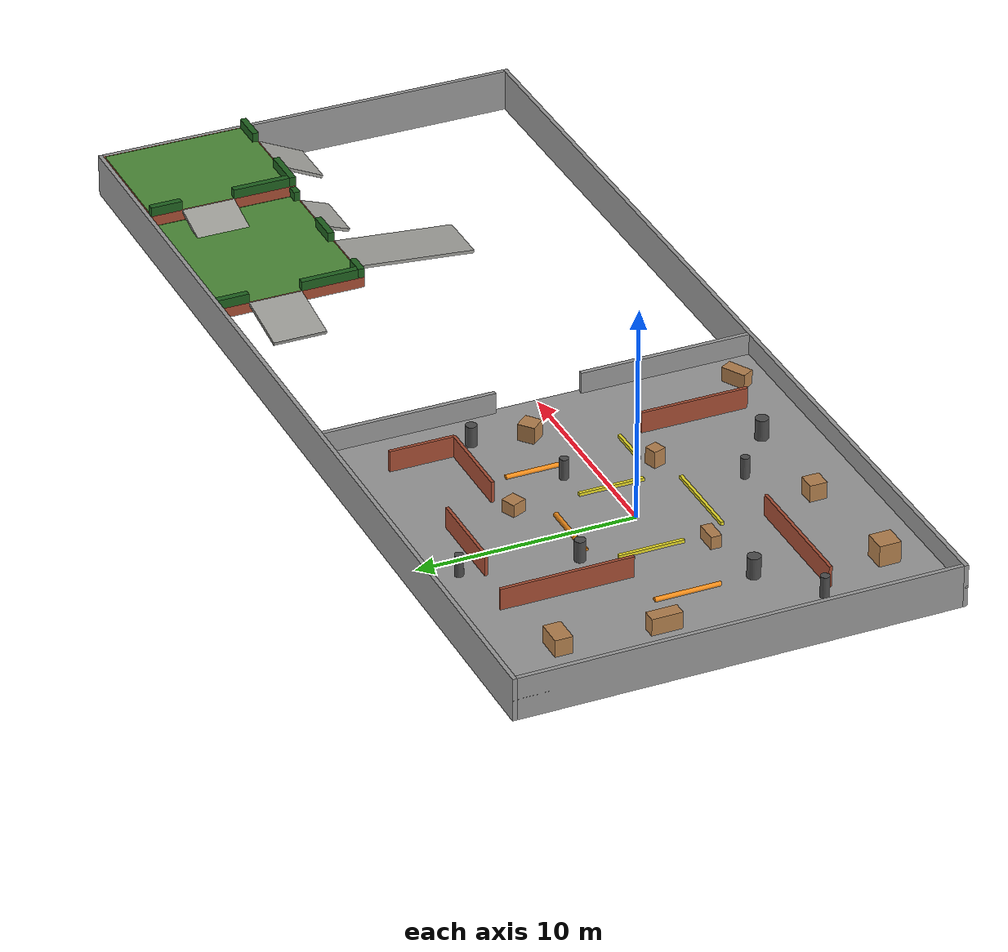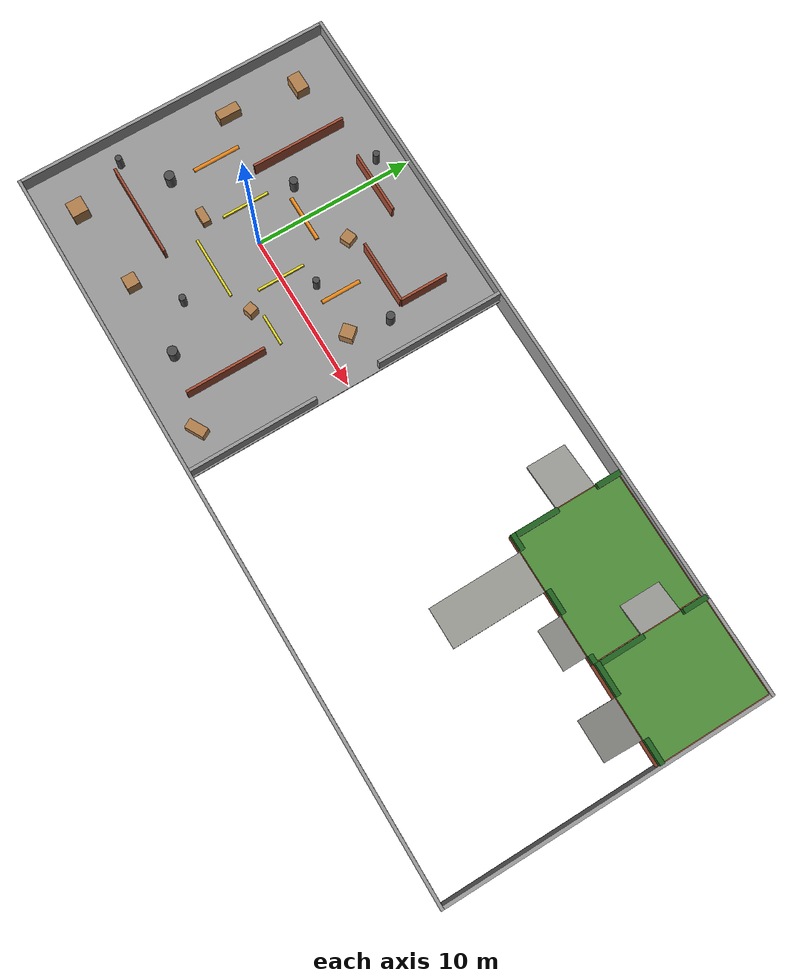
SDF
<sdf version="1.6">
 <world name="default">
  <include><uri>model://sun</uri></include>
  <model name="arena_floor">
   <static>true</static>
   <link name="floor">
    <pose>0 0 -0.05 0 0 0</pose>
    <collision name="collision">
     <geometry><box><size>20.4 20.4 0.1</size></box></geometry>
     <surface><friction><ode><mu>1.0</mu><mu2>1.0</mu2></ode></friction></surface>
    </collision>
    <visual name="visual">
     <geometry><box><size>20.4 20.4 0.1</size></box></geometry>
     <material>
      <script><uri>file://media/materials/scripts/gazebo.material</uri><name>Gazebo/Grey</name></script>
     </material>
    </visual>
   </link>
  </model>
  <model name="arena_walls">
   <static>true</static>
   <link name="north">
    <pose>13.0 10.1 0.0 0 0 0</pose>
    <collision name="collision">
     <geometry><box><size>46.4 0.2 2.0</size></box></geometry>
     <surface><friction><ode><mu>0.05</mu><mu2>0.05</mu2></ode></friction></surface>
    </collision>
    <visual name="visual">
     <geometry><box><size>46.4 0.2 2.0</size></box></geometry>
     <material>
      <script><uri>file://media/materials/scripts/gazebo.material</uri><name>Gazebo/Grey</name></script>
     </material>
    </visual>
   </link>
   <link name="south">
    <pose>13.0 -10.1 0.0 0 0 0</pose>
    <collision name="collision">
     <geometry><box><size>46.4 0.2 2.0</size></box></geometry>
     <surface><friction><ode><mu>0.05</mu><mu2>0.05</mu2></ode></friction></surface>
    </collision>
    <visual name="visual">
     <geometry><box><size>46.4 0.2 2.0</size></box></geometry>
     <material>
      <script><uri>file://media/materials/scripts/gazebo.material</uri><name>Gazebo/Grey</name></script>
     </material>
    </visual>
   </link>
   <link name="west">
    <pose>-10.1 0 0.0 0 0 0</pose>
    <collision name="collision">
     <geometry><box><size>0.2 20.0 2.0</size></box></geometry>
     <surface><friction><ode><mu>0.05</mu><mu2>0.05</mu2></ode></friction></surface>
    </collision>
    <visual name="visual">
     <geometry><box><size>0.2 20.0 2.0</size></box></geometry>
     <material>
      <script><uri>file://media/materials/scripts/gazebo.material</uri><name>Gazebo/Grey</name></script>
     </material>
    </visual>
   </link>
   <link name="east">
    <pose>36.1 0 0.0 0 0 0</pose>
    <collision name="collision">
     <geometry><box><size>0.2 20.0 2.0</size></box></geometry>
     <surface><friction><ode><mu>0.05</mu><mu2>0.05</mu2></ode></friction></surface>
    </collision>
    <visual name="visual">
     <geometry><box><size>0.2 20.0 2.0</size></box></geometry>
     <material>
      <script><uri>file://media/materials/scripts/gazebo.material</uri><name>Gazebo/Grey</name></script>
     </material>
    </visual>
   </link>
   <link name="gate_north">
    <pose>10.0 6 0.5 0 0 0</pose>
    <collision name="collision">
     <geometry><box><size>0.2 8.0 1.0</size></box></geometry>
     <surface><friction><ode><mu>0.05</mu><mu2>0.05</mu2></ode></friction></surface>
    </collision>
    <visual name="visual">
     <geometry><box><size>0.2 8.0 1.0</size></box></geometry>
     <material>
      <script><uri>file://media/materials/scripts/gazebo.material</uri><name>Gazebo/Grey</name></script>
     </material>
    </visual>
   </link>
   <link name="gate_south">
    <pose>10.0 -6 0.5 0 0 0</pose>
    <collision name="collision">
     <geometry><box><size>0.2 8.0 1.0</size></box></geometry>
     <surface><friction><ode><mu>0.05</mu><mu2>0.05</mu2></ode></friction></surface>
    </collision>
    <visual name="visual">
     <geometry><box><size>0.2 8.0 1.0</size></box></geometry>
     <material>
      <script><uri>file://media/materials/scripts/gazebo.material</uri><name>Gazebo/Grey</name></script>
     </material>
    </visual>
   </link>
  </model>
  <model name="inner_walls">
   <static>true</static>
   <link name="wall_0">
    <pose>-4.0 5.0 0.5 0 0 1.5708</pose>
    <collision name="collision">
     <geometry><box><size>6.0 0.15 1.0</size></box></geometry>
     <surface><friction><ode><mu>0.05</mu><mu2>0.05</mu2></ode></friction></surface>
    </collision>
    <visual name="visual">
     <geometry><box><size>6.0 0.15 1.0</size></box></geometry>
     <material>
      <script><uri>file://media/materials/scripts/gazebo.material</uri><name>Gazebo/Bricks</name></script>
     </material>
    </visual>
   </link>
   <link name="wall_1">
    <pose>-5.0 -5.0 0.5 0 0 0.0</pose>
    <collision name="collision">
     <geometry><box><size>6.0 0.15 1.0</size></box></geometry>
     <surface><friction><ode><mu>0.05</mu><mu2>0.05</mu2></ode></friction></surface>
    </collision>
    <visual name="visual">
     <geometry><box><size>6.0 0.15 1.0</size></box></geometry>
     <material>
      <script><uri>file://media/materials/scripts/gazebo.material</uri><name>Gazebo/Bricks</name></script>
     </material>
    </visual>
   </link>
   <link name="wall_2">
    <pose>6.0 -5.5 0.5 0 0 1.5708</pose>
    <collision name="collision">
     <geometry><box><size>5.0 0.15 1.0</size></box></geometry>
     <surface><friction><ode><mu>0.05</mu><mu2>0.05</mu2></ode></friction></surface>
    </collision>
    <visual name="visual">
     <geometry><box><size>5.0 0.15 1.0</size></box></geometry>
     <material>
      <script><uri>file://media/materials/scripts/gazebo.material</uri><name>Gazebo/Bricks</name></script>
     </material>
    </visual>
   </link>
   <link name="wall_3">
    <pose>5.5 5.0 0.5 0 0 0.0</pose>
    <collision name="collision">
     <geometry><box><size>4.0 0.15 1.0</size></box></geometry>
     <surface><friction><ode><mu>0.05</mu><mu2>0.05</mu2></ode></friction></surface>
    </collision>
    <visual name="visual">
     <geometry><box><size>4.0 0.15 1.0</size></box></geometry>
     <material>
      <script><uri>file://media/materials/scripts/gazebo.material</uri><name>Gazebo/Bricks</name></script>
     </material>
    </visual>
   </link>
   <link name="wall_4">
    <pose>7.5 6.5 0.5 0 0 1.5708</pose>
    <collision name="collision">
     <geometry><box><size>3.0 0.15 1.0</size></box></geometry>
     <surface><friction><ode><mu>0.05</mu><mu2>0.05</mu2></ode></friction></surface>
    </collision>
    <visual name="visual">
     <geometry><box><size>3.0 0.15 1.0</size></box></geometry>
     <material>
      <script><uri>file://media/materials/scripts/gazebo.material</uri><name>Gazebo/Bricks</name></script>
     </material>
    </visual>
   </link>
   <link name="wall_5">
    <pose>0.5 7.5 0.5 0 0 0.0</pose>
    <collision name="collision">
     <geometry><box><size>4.0 0.15 1.0</size></box></geometry>
     <surface><friction><ode><mu>0.05</mu><mu2>0.05</mu2></ode></friction></surface>
    </collision>
    <visual name="visual">
     <geometry><box><size>4.0 0.15 1.0</size></box></geometry>
     <material>
      <script><uri>file://media/materials/scripts/gazebo.material</uri><name>Gazebo/Bricks</name></script>
     </material>
    </visual>
   </link>
  </model>
  <model name="boxes">
   <static>true</static>
   <link name="box_0">
    <pose>3.5 -2.5 0.4 0 0 0.3</pose>
    <collision name="collision">
     <geometry><box><size>0.6 0.6 0.8</size></box></geometry>
     <surface><friction><ode><mu>0.05</mu><mu2>0.05</mu2></ode></friction></surface>
    </collision>
    <visual name="visual">
     <geometry><box><size>0.6 0.6 0.8</size></box></geometry>
     <material>
      <script><uri>file://media/materials/scripts/gazebo.material</uri><name>Gazebo/Wood</name></script>
     </material>
    </visual>
   </link>
   <link name="box_1">
    <pose>-3.0 -2.0 0.3 0 0 0.0</pose>
    <collision name="collision">
     <geometry><box><size>1.0 0.5 0.6</size></box></geometry>
     <surface><friction><ode><mu>0.05</mu><mu2>0.05</mu2></ode></friction></surface>
    </collision>
    <visual name="visual">
     <geometry><box><size>1.0 0.5 0.6</size></box></geometry>
     <material>
      <script><uri>file://media/materials/scripts/gazebo.material</uri><name>Gazebo/Wood</name></script>
     </material>
    </visual>
   </link>
   <link name="box_2">
    <pose>7.5 1.5 0.4 0 0 0.7</pose>
    <collision name="collision">
     <geometry><box><size>0.8 0.8 0.8</size></box></geometry>
     <surface><friction><ode><mu>0.05</mu><mu2>0.05</mu2></ode></friction></surface>
    </collision>
    <visual name="visual">
     <geometry><box><size>0.8 0.8 0.8</size></box></geometry>
     <material>
      <script><uri>file://media/materials/scripts/gazebo.material</uri><name>Gazebo/Wood</name></script>
     </material>
    </visual>
   </link>
   <link name="box_3">
    <pose>-7.5 7.0 0.4 0 0 0.0</pose>
    <collision name="collision">
     <geometry><box><size>1.2 0.8 0.8</size></box></geometry>
     <surface><friction><ode><mu>0.05</mu><mu2>0.05</mu2></ode></friction></surface>
    </collision>
    <visual name="visual">
     <geometry><box><size>1.2 0.8 0.8</size></box></geometry>
     <material>
      <script><uri>file://media/materials/scripts/gazebo.material</uri><name>Gazebo/Wood</name></script>
     </material>
    </visual>
   </link>
   <link name="box_4">
    <pose>2.5 4.5 0.3 0 0 0.4</pose>
    <collision name="collision">
     <geometry><box><size>0.7 0.7 0.6</size></box></geometry>
     <surface><friction><ode><mu>0.05</mu><mu2>0.05</mu2></ode></friction></surface>
    </collision>
    <visual name="visual">
     <geometry><box><size>0.7 0.7 0.6</size></box></geometry>
     <material>
      <script><uri>file://media/materials/scripts/gazebo.material</uri><name>Gazebo/Wood</name></script>
     </material>
    </visual>
   </link>
   <link name="box_5">
    <pose>-7.0 -8.0 0.5 0 0 0.0</pose>
    <collision name="collision">
     <geometry><box><size>1.0 1.0 1.0</size></box></geometry>
     <surface><friction><ode><mu>0.05</mu><mu2>0.05</mu2></ode></friction></surface>
    </collision>
    <visual name="visual">
     <geometry><box><size>1.0 1.0 1.0</size></box></geometry>
     <material>
      <script><uri>file://media/materials/scripts/gazebo.material</uri><name>Gazebo/Wood</name></script>
     </material>
    </visual>
   </link>
   <link name="box_6">
    <pose>8.0 -8.5 0.35 0 0 0.5</pose>
    <collision name="collision">
     <geometry><box><size>1.2 0.6 0.7</size></box></geometry>
     <surface><friction><ode><mu>0.05</mu><mu2>0.05</mu2></ode></friction></surface>
    </collision>
    <visual name="visual">
     <geometry><box><size>1.2 0.6 0.7</size></box></geometry>
     <material>
      <script><uri>file://media/materials/scripts/gazebo.material</uri><name>Gazebo/Wood</name></script>
     </material>
    </visual>
   </link>
   <link name="box_7">
    <pose>-1.5 -7.5 0.4 0 0 0.0</pose>
    <collision name="collision">
     <geometry><box><size>0.8 0.8 0.8</size></box></geometry>
     <surface><friction><ode><mu>0.05</mu><mu2>0.05</mu2></ode></friction></surface>
    </collision>
    <visual name="visual">
     <geometry><box><size>0.8 0.8 0.8</size></box></geometry>
     <material>
      <script><uri>file://media/materials/scripts/gazebo.material</uri><name>Gazebo/Wood</name></script>
     </material>
    </visual>
   </link>
   <link name="box_8">
    <pose>-8.0 2.5 0.4 0 0 0.0</pose>
    <collision name="collision">
     <geometry><box><size>0.6 1.4 0.8</size></box></geometry>
     <surface><friction><ode><mu>0.05</mu><mu2>0.05</mu2></ode></friction></surface>
    </collision>
    <visual name="visual">
     <geometry><box><size>0.6 1.4 0.8</size></box></geometry>
     <material>
      <script><uri>file://media/materials/scripts/gazebo.material</uri><name>Gazebo/Wood</name></script>
     </material>
    </visual>
   </link>
  </model>
  <model name="pillars">
   <static>true</static>
   <link name="pillar_0">
    <pose>4.0 1.5 0.5 0 0 0</pose>
    <collision name="collision">
     <geometry><cylinder><radius>0.2</radius><length>1.0</length></cylinder></geometry>
     <surface><friction><ode><mu>0.05</mu><mu2>0.05</mu2></ode></friction></surface>
    </collision>
    <visual name="visual">
     <geometry><cylinder><radius>0.2</radius><length>1.0</length></cylinder></geometry>
     <material>
      <script><uri>file://media/materials/scripts/gazebo.material</uri><name>Gazebo/DarkGrey</name></script>
     </material>
    </visual>
   </link>
   <link name="pillar_1">
    <pose>-2.0 3.5 0.5 0 0 0</pose>
    <collision name="collision">
     <geometry><cylinder><radius>0.25</radius><length>1.0</length></cylinder></geometry>
     <surface><friction><ode><mu>0.05</mu><mu2>0.05</mu2></ode></friction></surface>
    </collision>
    <visual name="visual">
     <geometry><cylinder><radius>0.25</radius><length>1.0</length></cylinder></geometry>
     <material>
      <script><uri>file://media/materials/scripts/gazebo.material</uri><name>Gazebo/DarkGrey</name></script>
     </material>
    </visual>
   </link>
   <link name="pillar_2">
    <pose>-6.0 -2.5 0.5 0 0 0</pose>
    <collision name="collision">
     <geometry><cylinder><radius>0.3</radius><length>1.0</length></cylinder></geometry>
     <surface><friction><ode><mu>0.05</mu><mu2>0.05</mu2></ode></friction></surface>
    </collision>
    <visual name="visual">
     <geometry><cylinder><radius>0.3</radius><length>1.0</length></cylinder></geometry>
     <material>
      <script><uri>file://media/materials/scripts/gazebo.material</uri><name>Gazebo/DarkGrey</name></script>
     </material>
    </visual>
   </link>
   <link name="pillar_3">
    <pose>1.0 -5.5 0.5 0 0 0</pose>
    <collision name="collision">
     <geometry><cylinder><radius>0.2</radius><length>1.0</length></cylinder></geometry>
     <surface><friction><ode><mu>0.05</mu><mu2>0.05</mu2></ode></friction></surface>
    </collision>
    <visual name="visual">
     <geometry><cylinder><radius>0.2</radius><length>1.0</length></cylinder></geometry>
     <material>
      <script><uri>file://media/materials/scripts/gazebo.material</uri><name>Gazebo/DarkGrey</name></script>
     </material>
    </visual>
   </link>
   <link name="pillar_4">
    <pose>8.0 4.0 0.5 0 0 0</pose>
    <collision name="collision">
     <geometry><cylinder><radius>0.25</radius><length>1.0</length></cylinder></geometry>
     <surface><friction><ode><mu>0.05</mu><mu2>0.05</mu2></ode></friction></surface>
    </collision>
    <visual name="visual">
     <geometry><cylinder><radius>0.25</radius><length>1.0</length></cylinder></geometry>
     <material>
      <script><uri>file://media/materials/scripts/gazebo.material</uri><name>Gazebo/DarkGrey</name></script>
     </material>
    </visual>
   </link>
   <link name="pillar_5">
    <pose>-8.5 -4.5 0.5 0 0 0</pose>
    <collision name="collision">
     <geometry><cylinder><radius>0.2</radius><length>1.0</length></cylinder></geometry>
     <surface><friction><ode><mu>0.05</mu><mu2>0.05</mu2></ode></friction></surface>
    </collision>
    <visual name="visual">
     <geometry><cylinder><radius>0.2</radius><length>1.0</length></cylinder></geometry>
     <material>
      <script><uri>file://media/materials/scripts/gazebo.material</uri><name>Gazebo/DarkGrey</name></script>
     </material>
    </visual>
   </link>
   <link name="pillar_6">
    <pose>3.5 -7.5 0.5 0 0 0</pose>
    <collision name="collision">
     <geometry><cylinder><radius>0.3</radius><length>1.0</length></cylinder></geometry>
     <surface><friction><ode><mu>0.05</mu><mu2>0.05</mu2></ode></friction></surface>
    </collision>
    <visual name="visual">
     <geometry><cylinder><radius>0.3</radius><length>1.0</length></cylinder></geometry>
     <material>
      <script><uri>file://media/materials/scripts/gazebo.material</uri><name>Gazebo/DarkGrey</name></script>
     </material>
    </visual>
   </link>
   <link name="pillar_7">
    <pose>-1.0 8.5 0.5 0 0 0</pose>
    <collision name="collision">
     <geometry><cylinder><radius>0.2</radius><length>1.0</length></cylinder></geometry>
     <surface><friction><ode><mu>0.05</mu><mu2>0.05</mu2></ode></friction></surface>
    </collision>
    <visual name="visual">
     <geometry><cylinder><radius>0.2</radius><length>1.0</length></cylinder></geometry>
     <material>
      <script><uri>file://media/materials/scripts/gazebo.material</uri><name>Gazebo/DarkGrey</name></script>
     </material>
    </visual>
   </link>
  </model>
  <model name="low_curbs">
   <static>true</static>
   <link name="curb_0">
    <pose>2.5 0.0 0.075 0 0 1.5708</pose>
    <collision name="collision">
     <geometry><box><size>3.0 0.15 0.15</size></box></geometry>
     <surface><friction><ode><mu>0.05</mu><mu2>0.05</mu2></ode></friction></surface>
    </collision>
    <visual name="visual">
     <geometry><box><size>3.0 0.15 0.15</size></box></geometry>
     <material>
      <script><uri>file://media/materials/scripts/gazebo.material</uri><name>Gazebo/Yellow</name></script>
     </material>
    </visual>
   </link>
   <link name="curb_1">
    <pose>0.0 -3.0 0.075 0 0 0.0</pose>
    <collision name="collision">
     <geometry><box><size>4.0 0.15 0.15</size></box></geometry>
     <surface><friction><ode><mu>0.05</mu><mu2>0.05</mu2></ode></friction></surface>
    </collision>
    <visual name="visual">
     <geometry><box><size>4.0 0.15 0.15</size></box></geometry>
     <material>
      <script><uri>file://media/materials/scripts/gazebo.material</uri><name>Gazebo/Yellow</name></script>
     </material>
    </visual>
   </link>
   <link name="curb_2">
    <pose>-2.5 0.5 0.075 0 0 1.5708</pose>
    <collision name="collision">
     <geometry><box><size>3.0 0.15 0.15</size></box></geometry>
     <surface><friction><ode><mu>0.05</mu><mu2>0.05</mu2></ode></friction></surface>
    </collision>
    <visual name="visual">
     <geometry><box><size>3.0 0.15 0.15</size></box></geometry>
     <material>
      <script><uri>file://media/materials/scripts/gazebo.material</uri><name>Gazebo/Yellow</name></script>
     </material>
    </visual>
   </link>
   <link name="curb_3">
    <pose>5.0 -2.0 0.075 0 0 0.0</pose>
    <collision name="collision">
     <geometry><box><size>2.0 0.15 0.15</size></box></geometry>
     <surface><friction><ode><mu>0.05</mu><mu2>0.05</mu2></ode></friction></surface>
    </collision>
    <visual name="visual">
     <geometry><box><size>2.0 0.15 0.15</size></box></geometry>
     <material>
      <script><uri>file://media/materials/scripts/gazebo.material</uri><name>Gazebo/Yellow</name></script>
     </material>
    </visual>
   </link>
  </model>
  <model name="speed_bumps">
   <static>true</static>
   <link name="bump_0">
    <pose>0.0 3.0 0.03 1.5708 0 1.5708</pose>
    <collision name="collision">
     <geometry><cylinder><radius>0.12</radius><length>3.0</length></cylinder></geometry>
     <surface><friction><ode><mu>0.05</mu><mu2>0.05</mu2></ode></friction></surface>
    </collision>
    <visual name="visual">
     <geometry><cylinder><radius>0.12</radius><length>3.0</length></cylinder></geometry>
     <material>
      <script><uri>file://media/materials/scripts/gazebo.material</uri><name>Gazebo/Orange</name></script>
     </material>
    </visual>
   </link>
   <link name="bump_1">
    <pose>-6.0 0.5 0.03 1.5708 0 3.1416</pose>
    <collision name="collision">
     <geometry><cylinder><radius>0.12</radius><length>3.0</length></cylinder></geometry>
     <surface><friction><ode><mu>0.05</mu><mu2>0.05</mu2></ode></friction></surface>
    </collision>
    <visual name="visual">
     <geometry><cylinder><radius>0.12</radius><length>3.0</length></cylinder></geometry>
     <material>
      <script><uri>file://media/materials/scripts/gazebo.material</uri><name>Gazebo/Orange</name></script>
     </material>
    </visual>
   </link>
   <link name="bump_2">
    <pose>5.0 2.5 0.03 1.5708 0 3.1416</pose>
    <collision name="collision">
     <geometry><cylinder><radius>0.12</radius><length>2.5</length></cylinder></geometry>
     <surface><friction><ode><mu>0.05</mu><mu2>0.05</mu2></ode></friction></surface>
    </collision>
    <visual name="visual">
     <geometry><cylinder><radius>0.12</radius><length>2.5</length></cylinder></geometry>
     <material>
      <script><uri>file://media/materials/scripts/gazebo.material</uri><name>Gazebo/Orange</name></script>
     </material>
    </visual>
   </link>
  </model>
  <model name="terraces">
   <static>true</static>
   <link name="terrace_b">
    <pose>26.0 6.5 0.25 0 0 0</pose>
    <collision name="collision">
     <geometry><box><size>8.0 7.0 0.5</size></box></geometry>
     <surface><friction><ode><mu>1.0</mu><mu2>1.0</mu2></ode></friction></surface>
    </collision>
    <visual name="visual">
     <geometry><box><size>8.0 7.0 0.5</size></box></geometry>
     <material>
      <script><uri>file://media/materials/scripts/gazebo.material</uri><name>Gazebo/Bricks</name></script>
     </material>
    </visual>
   </link>
   <link name="terrace_b_lawn">
    <pose>26.0 6.5 0.505 0 0 0</pose>
    <visual name="visual">
     <geometry><box><size>7.9 6.9 0.01</size></box></geometry>
     <material>
      <ambient>0.3 0.55 0.22 1</ambient>
      <diffuse>0.3 0.55 0.22 1</diffuse>
      <specular>0.05 0.05 0.05 1</specular>
     </material>
    </visual>
   </link>
   <link name="terrace_c">
    <pose>33.0 6.5 0.5 0 0 0</pose>
    <collision name="collision">
     <geometry><box><size>6.0 7.0 1.0</size></box></geometry>
     <surface><friction><ode><mu>1.0</mu><mu2>1.0</mu2></ode></friction></surface>
    </collision>
    <visual name="visual">
     <geometry><box><size>6.0 7.0 1.0</size></box></geometry>
     <material>
      <script><uri>file://media/materials/scripts/gazebo.material</uri><name>Gazebo/Bricks</name></script>
     </material>
    </visual>
   </link>
   <link name="terrace_c_lawn">
    <pose>33.0 6.5 1.005 0 0 0</pose>
    <visual name="visual">
     <geometry><box><size>5.9 6.9 0.01</size></box></geometry>
     <material>
      <ambient>0.3 0.55 0.22 1</ambient>
      <diffuse>0.3 0.55 0.22 1</diffuse>
      <specular>0.05 0.05 0.05 1</specular>
     </material>
    </visual>
   </link>
  </model>
  <model name="ramps">
   <static>true</static>
   <link name="ramp_meadow_b_west_10deg">
    <pose>20.5952 7.2500 0.1761 0 -0.1745 0.0000</pose>
    <collision name="collision">
     <geometry><box><size>2.8794 2.5 0.15</size></box></geometry>
     <surface><friction><ode><mu>1.0</mu><mu2>1.0</mu2></ode></friction></surface>
    </collision>
    <visual name="visual">
     <geometry><box><size>2.8794 2.5 0.15</size></box></geometry>
     <material>
      <ambient>0.62 0.62 0.6 1</ambient>
      <diffuse>0.62 0.62 0.6 1</diffuse>
      <specular>0.05 0.05 0.05 1</specular>
     </material>
    </visual>
   </link>
   <link name="ramp_meadow_b_long_5deg">
    <pose>24.2500 0.1490 0.1753 0 -0.0873 1.5708</pose>
    <collision name="collision">
     <geometry><box><size>5.7369 2.5 0.15</size></box></geometry>
     <surface><friction><ode><mu>1.0</mu><mu2>1.0</mu2></ode></friction></surface>
    </collision>
    <visual name="visual">
     <geometry><box><size>5.7369 2.5 0.15</size></box></geometry>
     <material>
      <ambient>0.62 0.62 0.6 1</ambient>
      <diffuse>0.62 0.62 0.6 1</diffuse>
      <specular>0.05 0.05 0.05 1</specular>
     </material>
    </visual>
   </link>
   <link name="ramp_meadow_b_short_20deg">
    <pose>28.2500 2.3388 0.1795 0 -0.3491 1.5708</pose>
    <collision name="collision">
     <geometry><box><size>1.4619 2.5 0.15</size></box></geometry>
     <surface><friction><ode><mu>1.0</mu><mu2>1.0</mu2></ode></friction></surface>
    </collision>
    <visual name="visual">
     <geometry><box><size>1.4619 2.5 0.15</size></box></geometry>
     <material>
      <ambient>0.62 0.62 0.6 1</ambient>
      <diffuse>0.62 0.62 0.6 1</diffuse>
      <specular>0.05 0.05 0.05 1</specular>
     </material>
    </visual>
   </link>
   <link name="ramp_b_c_15deg">
    <pose>29.0864 7.2500 0.6776 0 -0.2618 0.0000</pose>
    <collision name="collision">
     <geometry><box><size>1.9319 2.5 0.15</size></box></geometry>
     <surface><friction><ode><mu>1.0</mu><mu2>1.0</mu2></ode></friction></surface>
    </collision>
    <visual name="visual">
     <geometry><box><size>1.9319 2.5 0.15</size></box></geometry>
     <material>
      <ambient>0.62 0.62 0.6 1</ambient>
      <diffuse>0.62 0.62 0.6 1</diffuse>
      <specular>0.05 0.05 0.05 1</specular>
     </material>
    </visual>
   </link>
   <link name="ramp_meadow_c_25deg">
    <pose>33.2500 1.9594 0.4320 0 -0.4363 1.5708</pose>
    <collision name="collision">
     <geometry><box><size>2.3662 2.5 0.15</size></box></geometry>
     <surface><friction><ode><mu>1.0</mu><mu2>1.0</mu2></ode></friction></surface>
    </collision>
    <visual name="visual">
     <geometry><box><size>2.3662 2.5 0.15</size></box></geometry>
     <material>
      <ambient>0.62 0.62 0.6 1</ambient>
      <diffuse>0.62 0.62 0.6 1</diffuse>
      <specular>0.05 0.05 0.05 1</specular>
     </material>
    </visual>
   </link>
  </model>
  <model name="hedges">
   <static>true</static>
   <link name="hedge_b_s1">
    <pose>22.5 3.15 0.725 0 0 0.0</pose>
    <collision name="collision">
     <geometry><box><size>1.0 0.3 0.45</size></box></geometry>
     <surface><friction><ode><mu>0.05</mu><mu2>0.05</mu2></ode></friction></surface>
    </collision>
    <visual name="visual">
     <geometry><box><size>1.0 0.3 0.45</size></box></geometry>
     <material>
      <ambient>0.12 0.38 0.12 1</ambient>
      <diffuse>0.12 0.38 0.12 1</diffuse>
      <specular>0.05 0.05 0.05 1</specular>
     </material>
    </visual>
   </link>
   <link name="hedge_b_s2">
    <pose>26.25 3.15 0.725 0 0 0.0</pose>
    <collision name="collision">
     <geometry><box><size>1.5 0.3 0.45</size></box></geometry>
     <surface><friction><ode><mu>0.05</mu><mu2>0.05</mu2></ode></friction></surface>
    </collision>
    <visual name="visual">
     <geometry><box><size>1.5 0.3 0.45</size></box></geometry>
     <material>
      <ambient>0.12 0.38 0.12 1</ambient>
      <diffuse>0.12 0.38 0.12 1</diffuse>
      <specular>0.05 0.05 0.05 1</specular>
     </material>
    </visual>
   </link>
   <link name="hedge_b_s3">
    <pose>29.75 3.15 0.725 0 0 0.0</pose>
    <collision name="collision">
     <geometry><box><size>0.5 0.3 0.45</size></box></geometry>
     <surface><friction><ode><mu>0.05</mu><mu2>0.05</mu2></ode></friction></surface>
    </collision>
    <visual name="visual">
     <geometry><box><size>0.5 0.3 0.45</size></box></geometry>
     <material>
      <ambient>0.12 0.38 0.12 1</ambient>
      <diffuse>0.12 0.38 0.12 1</diffuse>
      <specular>0.05 0.05 0.05 1</specular>
     </material>
    </visual>
   </link>
   <link name="hedge_b_w1">
    <pose>22.15 4.65 0.725 0 0 1.5707963267948966</pose>
    <collision name="collision">
     <geometry><box><size>2.7 0.3 0.45</size></box></geometry>
     <surface><friction><ode><mu>0.05</mu><mu2>0.05</mu2></ode></friction></surface>
    </collision>
    <visual name="visual">
     <geometry><box><size>2.7 0.3 0.45</size></box></geometry>
     <material>
      <ambient>0.12 0.38 0.12 1</ambient>
      <diffuse>0.12 0.38 0.12 1</diffuse>
      <specular>0.05 0.05 0.05 1</specular>
     </material>
    </visual>
   </link>
   <link name="hedge_b_w2">
    <pose>22.15 9.25 0.725 0 0 1.5707963267948966</pose>
    <collision name="collision">
     <geometry><box><size>1.5 0.3 0.45</size></box></geometry>
     <surface><friction><ode><mu>0.05</mu><mu2>0.05</mu2></ode></friction></surface>
    </collision>
    <visual name="visual">
     <geometry><box><size>1.5 0.3 0.45</size></box></geometry>
     <material>
      <ambient>0.12 0.38 0.12 1</ambient>
      <diffuse>0.12 0.38 0.12 1</diffuse>
      <specular>0.05 0.05 0.05 1</specular>
     </material>
    </visual>
   </link>
   <link name="hedge_c_s1">
    <pose>31.0 3.15 1.225 0 0 0.0</pose>
    <collision name="collision">
     <geometry><box><size>2.0 0.3 0.45</size></box></geometry>
     <surface><friction><ode><mu>0.05</mu><mu2>0.05</mu2></ode></friction></surface>
    </collision>
    <visual name="visual">
     <geometry><box><size>2.0 0.3 0.45</size></box></geometry>
     <material>
      <ambient>0.12 0.38 0.12 1</ambient>
      <diffuse>0.12 0.38 0.12 1</diffuse>
      <specular>0.05 0.05 0.05 1</specular>
     </material>
    </visual>
   </link>
   <link name="hedge_c_s2">
    <pose>35.25 3.15 1.225 0 0 0.0</pose>
    <collision name="collision">
     <geometry><box><size>1.5 0.3 0.45</size></box></geometry>
     <surface><friction><ode><mu>0.05</mu><mu2>0.05</mu2></ode></friction></surface>
    </collision>
    <visual name="visual">
     <geometry><box><size>1.5 0.3 0.45</size></box></geometry>
     <material>
      <ambient>0.12 0.38 0.12 1</ambient>
      <diffuse>0.12 0.38 0.12 1</diffuse>
      <specular>0.05 0.05 0.05 1</specular>
     </material>
    </visual>
   </link>
   <link name="hedge_c_w1">
    <pose>30.15 4.65 1.225 0 0 1.5707963267948966</pose>
    <collision name="collision">
     <geometry><box><size>2.7 0.3 0.45</size></box></geometry>
     <surface><friction><ode><mu>0.05</mu><mu2>0.05</mu2></ode></friction></surface>
    </collision>
    <visual name="visual">
     <geometry><box><size>2.7 0.3 0.45</size></box></geometry>
     <material>
      <ambient>0.12 0.38 0.12 1</ambient>
      <diffuse>0.12 0.38 0.12 1</diffuse>
      <specular>0.05 0.05 0.05 1</specular>
     </material>
    </visual>
   </link>
   <link name="hedge_c_w2">
    <pose>30.15 9.25 1.225 0 0 1.5707963267948966</pose>
    <collision name="collision">
     <geometry><box><size>1.5 0.3 0.45</size></box></geometry>
     <surface><friction><ode><mu>0.05</mu><mu2>0.05</mu2></ode></friction></surface>
    </collision>
    <visual name="visual">
     <geometry><box><size>1.5 0.3 0.45</size></box></geometry>
     <material>
      <ambient>0.12 0.38 0.12 1</ambient>
      <diffuse>0.12 0.38 0.12 1</diffuse>
      <specular>0.05 0.05 0.05 1</specular>
     </material>
    </visual>
   </link>
  </model>
 </world>
</sdf>
